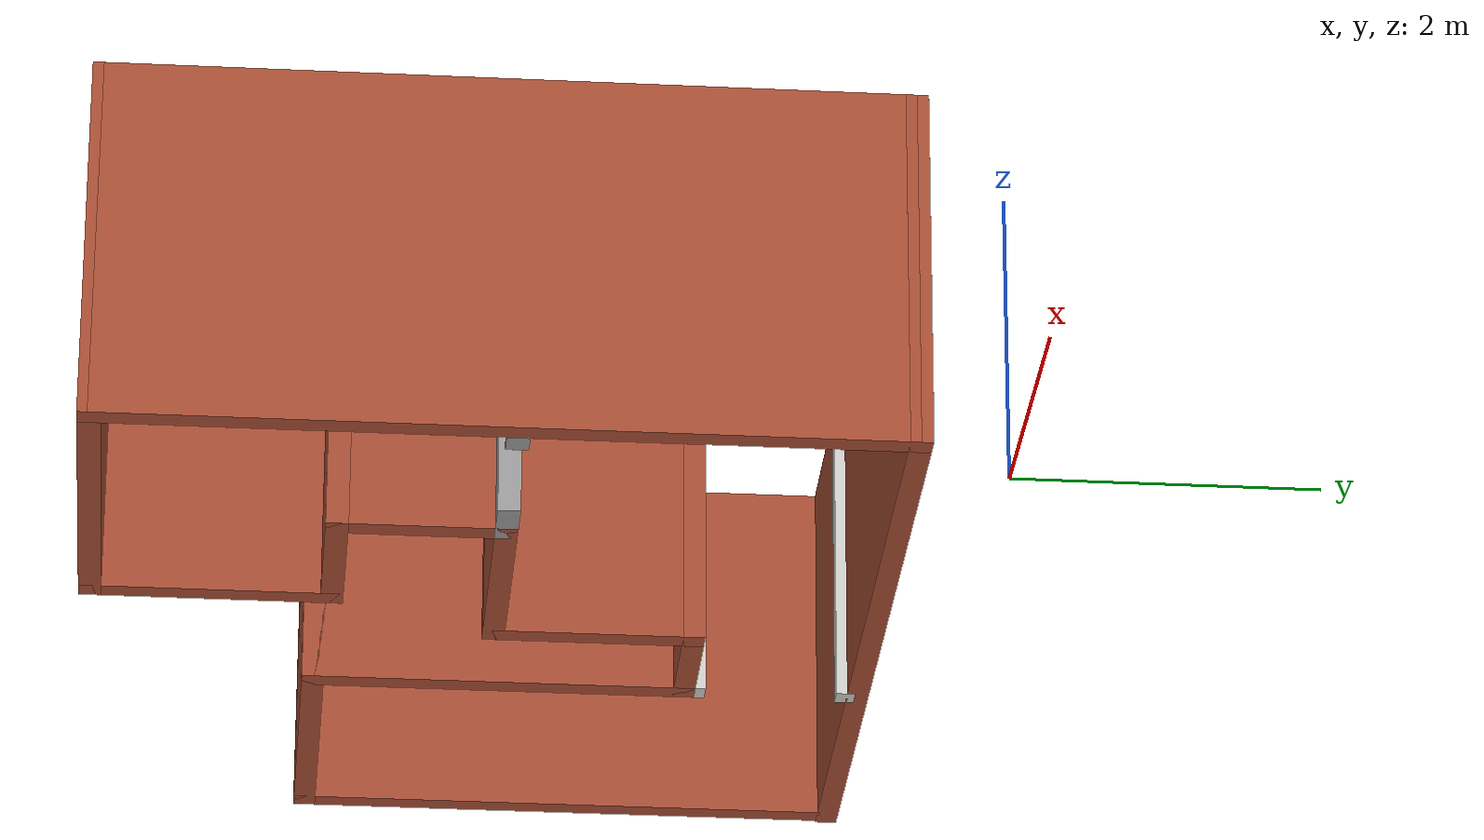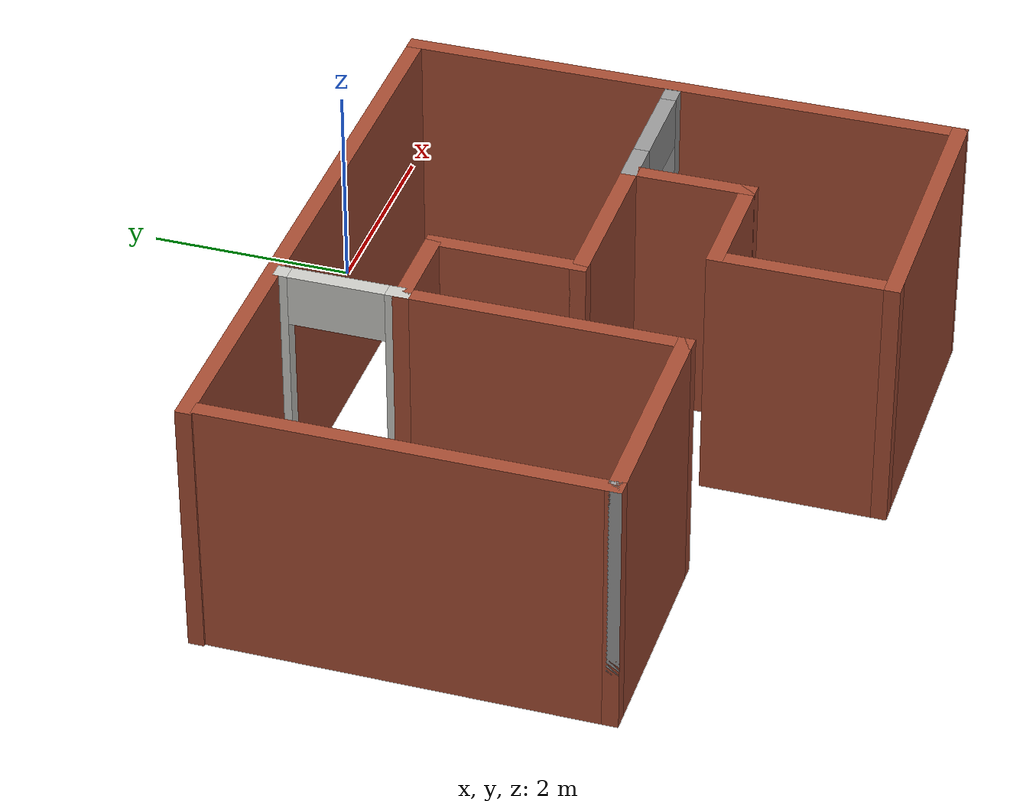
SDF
<?xml version='1.0'?>
<sdf version='1.7'>
  <model name='Stanza'>
    <pose>-2.6428 -2.96772 0 0 -0 0</pose>
    <link name='Wall_10'>
      <collision name='Wall_10_Collision'>
        <geometry>
          <box>
            <size>1.75 0.15 2.5</size>
          </box>
        </geometry>
        <pose>0 0 1.25 0 -0 0</pose>
      </collision>
      <visual name='Wall_10_Visual'>
        <pose>0 0 1.25 0 -0 0</pose>
        <geometry>
          <box>
            <size>1.75 0.15 2.5</size>
          </box>
        </geometry>
        <material>
          <script>
            <uri>file://media/materials/scripts/gazebo.material</uri>
            <name>Gazebo/Bricks</name>
          </script>
          <ambient>1 1 1 1</ambient>
        </material>
        <meta>
          <layer>0</layer>
        </meta>
      </visual>
      <pose>0.739754 -0.19264 0 0 -0 3.14159</pose>
    </link>
    <link name='Wall_11'>
      <collision name='Wall_11_Collision'>
        <geometry>
          <box>
            <size>1.5 0.15 2.5</size>
          </box>
        </geometry>
        <pose>0 0 1.25 0 -0 0</pose>
      </collision>
      <visual name='Wall_11_Visual'>
        <pose>0 0 1.25 0 -0 0</pose>
        <geometry>
          <box>
            <size>1.5 0.15 2.5</size>
          </box>
        </geometry>
        <material>
          <script>
            <uri>file://media/materials/scripts/gazebo.material</uri>
            <name>Gazebo/Bricks</name>
          </script>
          <ambient>1 1 1 1</ambient>
        </material>
        <meta>
          <layer>0</layer>
        </meta>
      </visual>
      <pose>-0.060246 0.48236 0 0 -0 1.5708</pose>
    </link>
    <link name='Wall_12'>
      <collision name='Wall_12_Collision'>
        <geometry>
          <box>
            <size>1 0.15 2.5</size>
          </box>
        </geometry>
        <pose>0 0 1.25 0 -0 0</pose>
      </collision>
      <visual name='Wall_12_Visual'>
        <pose>0 0 1.25 0 -0 0</pose>
        <geometry>
          <box>
            <size>1 0.15 2.5</size>
          </box>
        </geometry>
        <material>
          <script>
            <uri>file://media/materials/scripts/gazebo.material</uri>
            <name>Gazebo/Bricks</name>
          </script>
          <ambient>1 1 1 1</ambient>
        </material>
        <meta>
          <layer>0</layer>
        </meta>
      </visual>
      <pose>-0.485246 1.15736 0 0 -0 3.14159</pose>
    </link>
    <link name='Wall_13'>
      <collision name='Wall_13_Collision'>
        <geometry>
          <box>
            <size>2.68917 0.15 2.5</size>
          </box>
        </geometry>
        <pose>0 0 1.25 0 -0 0</pose>
      </collision>
      <visual name='Wall_13_Visual'>
        <pose>0 0 1.25 0 -0 0</pose>
        <geometry>
          <box>
            <size>2.68917 0.15 2.5</size>
          </box>
        </geometry>
        <material>
          <script>
            <uri>file://media/materials/scripts/gazebo.material</uri>
            <name>Gazebo/Bricks</name>
          </script>
          <ambient>1 1 1 1</ambient>
        </material>
        <meta>
          <layer>0</layer>
        </meta>
      </visual>
      <pose>-0.910246 -0.112222 0 0 -0 -1.5708</pose>
    </link>
    <link name='Wall_14'>
      <collision name='Wall_14_Collision'>
        <geometry>
          <box>
            <size>2.26 0.15 2.5</size>
          </box>
        </geometry>
        <pose>0 0 1.25 0 -0 0</pose>
      </collision>
      <visual name='Wall_14_Visual'>
        <pose>0 0 1.25 0 -0 0</pose>
        <geometry>
          <box>
            <size>2.26 0.15 2.5</size>
          </box>
        </geometry>
        <material>
          <script>
            <uri>file://media/materials/scripts/gazebo.material</uri>
            <name>Gazebo/Bricks</name>
          </script>
          <ambient>1 1 1 1</ambient>
        </material>
        <meta>
          <layer>0</layer>
        </meta>
      </visual>
      <pose>-1.96525 -1.3818 0 0 -0 3.14159</pose>
    </link>
    <link name='Wall_15'>
      <collision name='Wall_15_Collision'>
        <geometry>
          <box>
            <size>0.15 0.15 2.5</size>
          </box>
        </geometry>
        <pose>0 0 1.25 0 -0 0</pose>
      </collision>
      <visual name='Wall_15_Visual'>
        <pose>0 0 1.25 0 -0 0</pose>
        <geometry>
          <box>
            <size>0.15 0.15 2.5</size>
          </box>
        </geometry>
        <material>
          <script>
            <uri>file://media/materials/scripts/gazebo.material</uri>
            <name>Gazebo/Grey</name>
          </script>
          <ambient>1 1 1 1</ambient>
        </material>
        <meta>
          <layer>0</layer>
        </meta>
      </visual>
      <pose>-3.02025 -1.3818 0 0 -0 0</pose>
    </link>
    <link name='Wall_21'>
      <collision name='Wall_21_Collision'>
        <geometry>
          <box>
            <size>3.75 0.15 2.5</size>
          </box>
        </geometry>
        <pose>0 0 1.25 0 -0 0</pose>
      </collision>
      <visual name='Wall_21_Visual'>
        <pose>0 0 1.25 0 -0 0</pose>
        <geometry>
          <box>
            <size>3.75 0.15 2.5</size>
          </box>
        </geometry>
        <material>
          <script>
            <uri>file://media/materials/scripts/gazebo.material</uri>
            <name>Gazebo/Bricks</name>
          </script>
          <ambient>1 1 1 1</ambient>
        </material>
        <meta>
          <layer>0</layer>
        </meta>
      </visual>
      <pose>-3.02025 0.418195 0 0 -0 1.5708</pose>
    </link>
    <link name='Wall_24'>
      <pose>-0.910246 1.70736 0 0 -0 1.5708</pose>
      <visual name='Wall_24_Visual_0'>
        <pose>-0.515283 0 1.25 0 -0 0</pose>
        <geometry>
          <box>
            <size>0.219434 0.15 2.5</size>
          </box>
        </geometry>
        <material>
          <script>
            <uri>file://media/materials/scripts/gazebo.material</uri>
            <name>Gazebo/CeilingTiled</name>
          </script>
          <ambient>1 1 1 1</ambient>
        </material>
        <meta>
          <layer>0</layer>
        </meta>
      </visual>
      <collision name='Wall_24_Collision_0'>
        <geometry>
          <box>
            <size>0.219434 0.15 2.5</size>
          </box>
        </geometry>
        <pose>-0.515283 0 1.25 0 -0 0</pose>
      </collision>
      <visual name='Wall_24_Visual_1'>
        <pose>0.559717 0 1.25 0 -0 0</pose>
        <geometry>
          <box>
            <size>0.130566 0.15 2.5</size>
          </box>
        </geometry>
        <material>
          <script>
            <uri>file://media/materials/scripts/gazebo.material</uri>
            <name>Gazebo/CeilingTiled</name>
          </script>
          <ambient>1 1 1 1</ambient>
        </material>
        <meta>
          <layer>0</layer>
        </meta>
      </visual>
      <collision name='Wall_24_Collision_1'>
        <geometry>
          <box>
            <size>0.130566 0.15 2.5</size>
          </box>
        </geometry>
        <pose>0.559717 0 1.25 0 -0 0</pose>
      </collision>
      <visual name='Wall_24_Visual_2'>
        <pose>0.044434 0 2.25 0 -0 0</pose>
        <geometry>
          <box>
            <size>0.9 0.15 0.5</size>
          </box>
        </geometry>
        <material>
          <script>
            <uri>file://media/materials/scripts/gazebo.material</uri>
            <name>Gazebo/CeilingTiled</name>
          </script>
          <ambient>1 1 1 1</ambient>
        </material>
        <meta>
          <layer>0</layer>
        </meta>
      </visual>
      <collision name='Wall_24_Collision_2'>
        <geometry>
          <box>
            <size>0.9 0.15 0.5</size>
          </box>
        </geometry>
        <pose>0.044434 0 2.25 0 -0 0</pose>
      </collision>
    </link>
    <link name='Wall_26'>
      <pose>2.21475 -0.19264 0 0 -0 0</pose>
      <visual name='Wall_26_Visual_0'>
        <pose>-0.534617 0 1.25 0 -0 0</pose>
        <geometry>
          <box>
            <size>0.430766 0.15 2.5</size>
          </box>
        </geometry>
        <material>
          <script>
            <uri>file://media/materials/scripts/gazebo.material</uri>
            <name>Gazebo/Grey</name>
          </script>
          <ambient>1 1 1 1</ambient>
        </material>
        <meta>
          <layer>0</layer>
        </meta>
      </visual>
      <collision name='Wall_26_Collision_0'>
        <geometry>
          <box>
            <size>0.430766 0.15 2.5</size>
          </box>
        </geometry>
        <pose>-0.534617 0 1.25 0 -0 0</pose>
      </collision>
      <visual name='Wall_26_Visual_1'>
        <pose>0.665383 0 1.25 0 -0 0</pose>
        <geometry>
          <box>
            <size>0.169234 0.15 2.5</size>
          </box>
        </geometry>
        <material>
          <script>
            <uri>file://media/materials/scripts/gazebo.material</uri>
            <name>Gazebo/Grey</name>
          </script>
          <ambient>1 1 1 1</ambient>
        </material>
        <meta>
          <layer>0</layer>
        </meta>
      </visual>
      <collision name='Wall_26_Collision_1'>
        <geometry>
          <box>
            <size>0.169234 0.15 2.5</size>
          </box>
        </geometry>
        <pose>0.665383 0 1.25 0 -0 0</pose>
      </collision>
      <visual name='Wall_26_Visual_2'>
        <pose>0.130766 0 2.25 0 -0 0</pose>
        <geometry>
          <box>
            <size>0.9 0.15 0.5</size>
          </box>
        </geometry>
        <material>
          <script>
            <uri>file://media/materials/scripts/gazebo.material</uri>
            <name>Gazebo/Grey</name>
          </script>
          <ambient>1 1 1 1</ambient>
        </material>
        <meta>
          <layer>0</layer>
        </meta>
      </visual>
      <collision name='Wall_26_Collision_2'>
        <geometry>
          <box>
            <size>0.9 0.15 0.5</size>
          </box>
        </geometry>
        <pose>0.130766 0 2.25 0 -0 0</pose>
      </collision>
    </link>
    <link name='Wall_4'>
      <collision name='Wall_4_Collision'>
        <geometry>
          <box>
            <size>6.24 0.15 2.5</size>
          </box>
        </geometry>
        <pose>0 0 1.25 0 -0 0</pose>
      </collision>
      <visual name='Wall_4_Visual'>
        <pose>0 0 1.25 0 -0 0</pose>
        <geometry>
          <box>
            <size>6.24 0.15 2.5</size>
          </box>
        </geometry>
        <material>
          <script>
            <uri>file://media/materials/scripts/gazebo.material</uri>
            <name>Gazebo/Bricks</name>
          </script>
          <ambient>1 1 1 1</ambient>
        </material>
        <meta>
          <layer>0</layer>
        </meta>
      </visual>
      <pose>-3.7e-05 2.3509 0 0 -0 0</pose>
    </link>
    <link name='Wall_5'>
      <collision name='Wall_5_Collision'>
        <geometry>
          <box>
            <size>5.39356 0.15 2.5</size>
          </box>
        </geometry>
        <pose>0 0 1.25 0 -0 0</pose>
      </collision>
      <visual name='Wall_5_Visual'>
        <pose>0 0 1.25 0 -0 0</pose>
        <geometry>
          <box>
            <size>5.39356 0.15 2.5</size>
          </box>
        </geometry>
        <material>
          <script>
            <uri>file://media/materials/scripts/gazebo.material</uri>
            <name>Gazebo/Bricks</name>
          </script>
          <ambient>1 1 1 1</ambient>
        </material>
        <meta>
          <layer>0</layer>
        </meta>
      </visual>
      <pose>3.04236 -0.270871 0 0 -0 -1.57179</pose>
    </link>
    <link name='Wall_6'>
      <collision name='Wall_6_Collision'>
        <geometry>
          <box>
            <size>2.75 0.15 2.5</size>
          </box>
        </geometry>
        <pose>0 0 1.25 0 -0 0</pose>
      </collision>
      <visual name='Wall_6_Visual'>
        <pose>0 0 1.25 0 -0 0</pose>
        <geometry>
          <box>
            <size>2.75 0.15 2.5</size>
          </box>
        </geometry>
        <material>
          <script>
            <uri>file://media/materials/scripts/gazebo.material</uri>
            <name>Gazebo/Bricks</name>
          </script>
          <ambient>1 1 1 1</ambient>
        </material>
        <meta>
          <layer>0</layer>
        </meta>
      </visual>
      <pose>1.73975 -2.89264 0 0 -0 3.14159</pose>
    </link>
    <link name='Wall_7'>
      <collision name='Wall_7_Collision'>
        <geometry>
          <box>
            <size>1.75 0.15 2.5</size>
          </box>
        </geometry>
        <pose>0 0 1.25 0 -0 0</pose>
      </collision>
      <visual name='Wall_7_Visual'>
        <pose>0 0 1.25 0 -0 0</pose>
        <geometry>
          <box>
            <size>1.75 0.15 2.5</size>
          </box>
        </geometry>
        <material>
          <script>
            <uri>file://media/materials/scripts/gazebo.material</uri>
            <name>Gazebo/Bricks</name>
          </script>
          <ambient>1 1 1 1</ambient>
        </material>
        <meta>
          <layer>0</layer>
        </meta>
      </visual>
      <pose>0.439754 -2.09264 0 0 -0 1.5708</pose>
    </link>
    <link name='Wall_8'>
      <collision name='Wall_8_Collision'>
        <geometry>
          <box>
            <size>1.25 0.15 2.5</size>
          </box>
        </geometry>
        <pose>0 0 1.25 0 -0 0</pose>
      </collision>
      <visual name='Wall_8_Visual'>
        <pose>0 0 1.25 0 -0 0</pose>
        <geometry>
          <box>
            <size>1.25 0.15 2.5</size>
          </box>
        </geometry>
        <material>
          <script>
            <uri>file://media/materials/scripts/gazebo.material</uri>
            <name>Gazebo/Bricks</name>
          </script>
          <ambient>1 1 1 1</ambient>
        </material>
        <meta>
          <layer>0</layer>
        </meta>
      </visual>
      <pose>0.989754 -1.29264 0 0 -0 0</pose>
    </link>
    <link name='Wall_9'>
      <collision name='Wall_9_Collision'>
        <geometry>
          <box>
            <size>1.25 0.15 2.5</size>
          </box>
        </geometry>
        <pose>0 0 1.25 0 -0 0</pose>
      </collision>
      <visual name='Wall_9_Visual'>
        <pose>0 0 1.25 0 -0 0</pose>
        <geometry>
          <box>
            <size>1.25 0.15 2.5</size>
          </box>
        </geometry>
        <material>
          <script>
            <uri>file://media/materials/scripts/gazebo.material</uri>
            <name>Gazebo/Bricks</name>
          </script>
          <ambient>1 1 1 1</ambient>
        </material>
        <meta>
          <layer>0</layer>
        </meta>
      </visual>
      <pose>1.53975 -0.74264 0 0 -0 1.5708</pose>
    </link>
    <static>1</static>
  </model>
</sdf>
